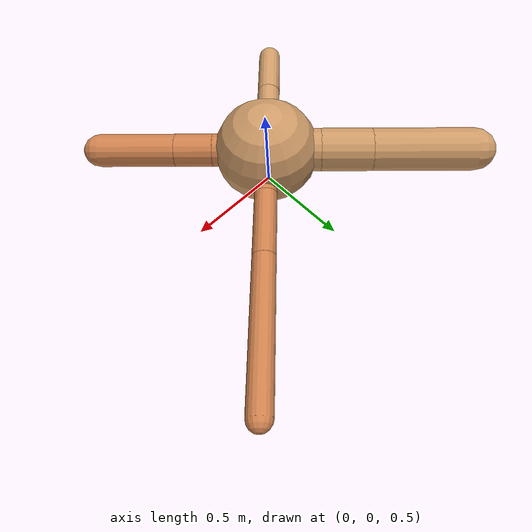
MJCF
<?xml version="1.0" ?>
<mujoco model="ant">

	<compiler angle="degree" coordinate="local" inertiafromgeom="true"/>

	<option integrator="RK4" timestep="0.01"/>

	<custom>

		<numeric data="0.0 0.0 0.55 1.0 0.0 0.0 0.0 0.0 1.0 0.0 -1.0 0.0 -1.0 0.0 1.0" name="init_qpos"/>

	</custom>

	<default>

		<joint armature="1" damping="1" limited="true"/>

		<geom conaffinity="0" condim="3" density="5.0" friction="1.5 0.1 0.1" margin="0.01" rgba="0.8 0.6 0.4 1"/>

	</default>

	<worldbody>

		<body name="torso" pos="0 0 0.75">

			<geom name="torso_geom" pos="0 0 0" size="0.27196837225983395" type="sphere"/>

			<!--joint armature="0" damping="0" limited="false" margin="0.01" name="root" pos="0 0 0" type="free"/-->

			<body name="front_left_leg" pos="0 0 0">

				<geom fromto="0 0 0 0.2 0.2 0" name="aux_1_geom" size="0.057562719994127924" type="capsule" rgba=".8 .5 .3 1"/>

				<body name="aux_1" pos="0.2 0.2 0">

					<joint axis="0 0 1" name="hip_1" pos="0.0 0.0 0.0" range="-40 40" type="hinge"/>

					<geom fromto="0 0 0 0.24342921232973122 0.24342921232973122 0" name="left_leg_geom" size="0.057562719994127924" type="capsule" rgba=".8 .5 .3 1"/>

					<body pos="0.24342921232973122 0.24342921232973122 0" name="front_left_foot">

						<joint axis="-1 1 0" name="ankle_1" pos="0.0 0.0 0.0" range="30 100" type="hinge"/>

						<geom fromto="0 0 0 0.48685842465946244 0.48685842465946244 0" name="left_ankle_geom" size="0.057562719994127924" type="capsule" rgba=".8 .5 .3 1"/>

					</body>

				</body>

			</body>

			<body name="front_right_leg" pos="0 0 0">

				<geom fromto="0 0 0 -0.2 0.2 0" name="aux_2_geom" size="0.11441264254633665" type="capsule"/>

				<body name="aux_2" pos="-0.2 0.2 0">

					<joint axis="0 0 1" name="hip_2" pos="0.0 0.0 0.0" range="-40 40" type="hinge"/>

					<geom fromto="0 0 0 -0.19052444738429283 0.19052444738429283 0" name="right_leg_geom" size="0.11441264254633665" type="capsule"/>

					<body pos="-0.19052444738429283 0.19052444738429283 0" name="front_right_foot">

						<joint axis="1 1 0" name="ankle_2" pos="0.0 0.0 0.0" range="-100 -30" type="hinge"/>

						<geom fromto="0 0 0 -0.38104889476858567 0.38104889476858567 0" name="right_ankle_geom" size="0.11441264254633665" type="capsule"/>

					</body>

				</body>

			</body>

			<body name="left_back_leg" pos="0 0 0">

				<geom fromto="0 0 0 -0.2 -0.2 0" name="aux_3_geom" size="0.062264141831929534" type="capsule"/>

				<body name="aux_3" pos="-0.2 -0.2 0">

					<joint axis="0 0 1" name="hip_3" pos="0.0 0.0 0.0" range="-40 40" type="hinge"/>

					<geom fromto="0 0 0 -0.10461567590767429 -0.10461567590767429 0" name="back_leg_geom" size="0.062264141831929534" type="capsule"/>

					<body pos="-0.10461567590767429 -0.10461567590767429 0" name="left_back_foot">

						<joint axis="-1 1 0" name="ankle_3" pos="0.0 0.0 0.0" range="-100 -30" type="hinge"/>

						<geom fromto="0 0 0 -0.20923135181534858 -0.20923135181534858 0" name="third_ankle_geom" size="0.062264141831929534" type="capsule"/>

					</body>

				</body>

			</body>

			<body name="right_back_leg" pos="0 0 0">

				<geom fromto="0 0 0 0.2 -0.2 0" name="aux_4_geom" size="0.08653901240199267" type="capsule" rgba=".8 .5 .3 1"/>

				<body name="aux_4" pos="0.2 -0.2 0">

					<joint axis="0 0 1" name="hip_4" pos="0.0 0.0 0.0" range="-40 40" type="hinge"/>

					<geom fromto="0 0 0 0.1390898478564852 -0.1390898478564852 0" name="rightback_leg_geom" size="0.08653901240199267" type="capsule" rgba=".8 .5 .3 1"/>

					<body pos="0.1390898478564852 -0.1390898478564852 0" name="right_back_foot">

						<joint axis="1 1 0" name="ankle_4" pos="0.0 0.0 0.0" range="30 100" type="hinge"/>

						<geom fromto="0 0 0 0.2781796957129704 -0.2781796957129704 0" name="fourth_ankle_geom" size="0.08653901240199267" type="capsule" rgba=".8 .5 .3 1"/>

					</body>

				</body>

			</body>

		</body>

	</worldbody>

	<actuator>

		<motor ctrllimited="true" ctrlrange="-1.0 1.0" joint="hip_4" gear="150"/>

		<motor ctrllimited="true" ctrlrange="-1.0 1.0" joint="ankle_4" gear="150"/>

		<motor ctrllimited="true" ctrlrange="-1.0 1.0" joint="hip_1" gear="150"/>

		<motor ctrllimited="true" ctrlrange="-1.0 1.0" joint="ankle_1" gear="150"/>

		<motor ctrllimited="true" ctrlrange="-1.0 1.0" joint="hip_2" gear="150"/>

		<motor ctrllimited="true" ctrlrange="-1.0 1.0" joint="ankle_2" gear="150"/>

		<motor ctrllimited="true" ctrlrange="-1.0 1.0" joint="hip_3" gear="150"/>

		<motor ctrllimited="true" ctrlrange="-1.0 1.0" joint="ankle_3" gear="150"/>

	</actuator>

</mujoco>
